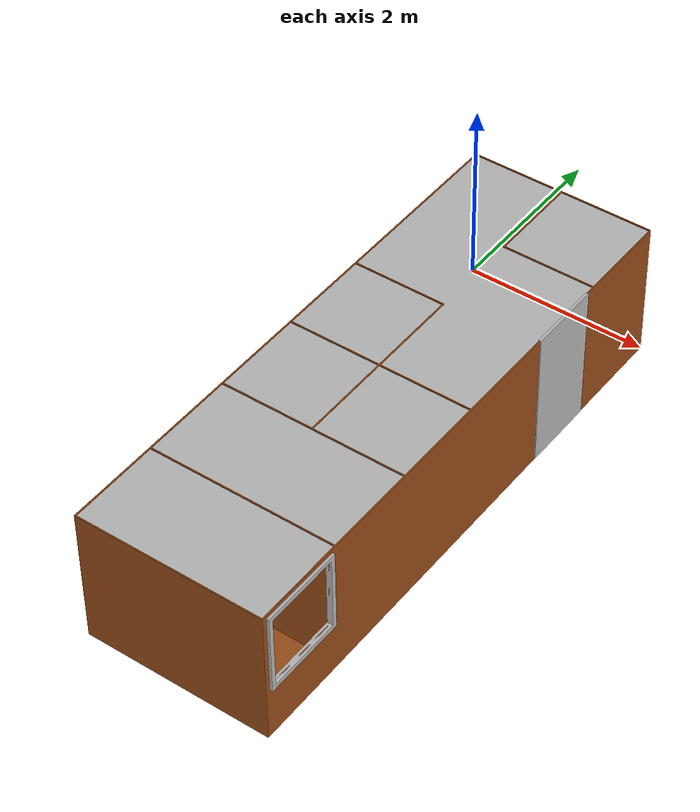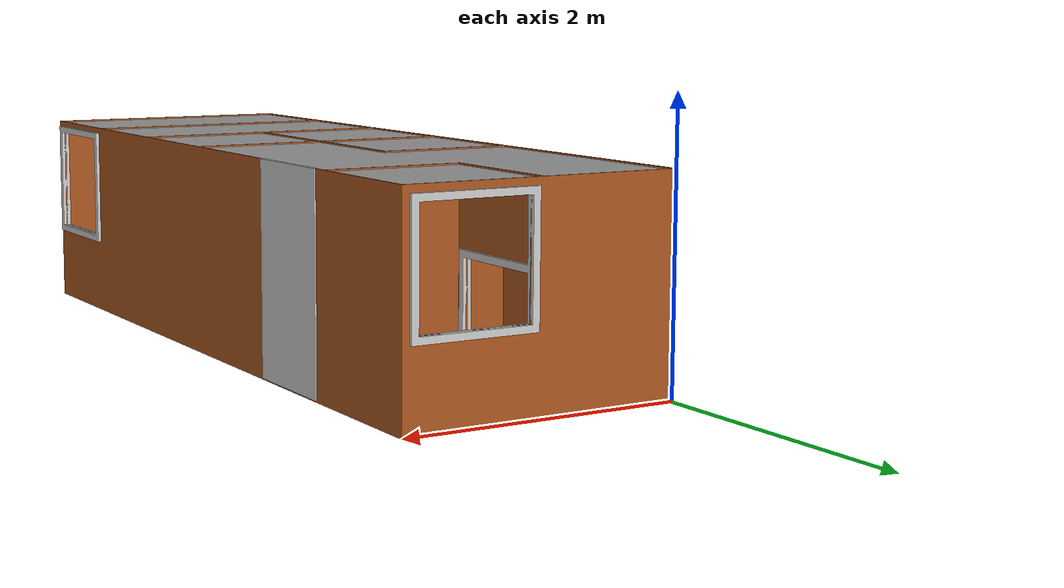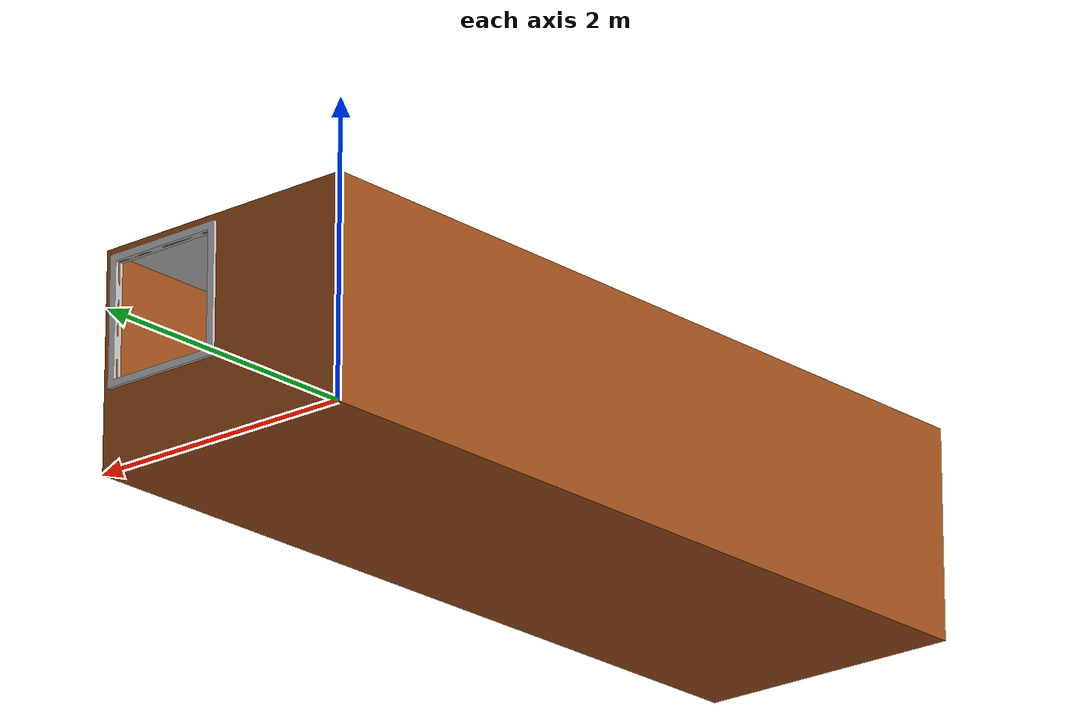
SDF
<?xml version="1.0"?>
<sdf version="1.5">
    <model name="cluttered_environment">
        <static>true</static>

        <!-- cluttered environment walls -->
        <link name="walls_link">
            <inertial>
              <mass>1</mass>
              <inertia>
                <ixx>0.166667</ixx>
                <ixy>0</ixy>
                <ixz>0</ixz>
                <iyy>0.166667</iyy>
                <iyz>0</iyz>
                <izz>0.166667</izz>
              </inertia>
            </inertial>
            <pose>0 0 0 0 0 -1.5708</pose>
            <visual name="walls_visual">
                <geometry>
                    <mesh>
                      <uri>model://cluttered_environment/meshes/cluttered_environment_walls.obj</uri>
                      <scale>0.01 0.01 0.01</scale>
                    </mesh>
                </geometry>
                <transparency>0</transparency>
                <cast_shadows>1</cast_shadows>
                <material>
                    <ambient>0.6 0.3 0.1 1</ambient> <!-- Cor ambiente (branco) -->
                    <diffuse>0.6 0.3 0.1 1</diffuse> <!-- Cor difusa (branco) -->
                    <specular>0.6 0.3 0.1 1</specular> <!-- Cor especular (cinza claro) -->
                </material>
            </visual>
            <collision name='collision'>
              <laser_retro>0</laser_retro>
              <max_contacts>10</max_contacts>
              <pose>0 0 0 0 0 0</pose>
              <geometry>
                <mesh>
                  <uri>model://cluttered_environment/meshes/cluttered_environment_walls.obj</uri>
                  <scale>0.01 0.01 0.01</scale>
                </mesh>
              </geometry>
            </collision>
        </link>
        <static>1</static>
        <allow_auto_disable>1</allow_auto_disable>

        <!-- cluttered environment windows -->
        <link name="windows_link">
            <inertial>
              <mass>1</mass>
              <inertia>
                <ixx>0.166667</ixx>
                <ixy>0</ixy>
                <ixz>0</ixz>
                <iyy>0.166667</iyy>
                <iyz>0</iyz>
                <izz>0.166667</izz>
              </inertia>
            </inertial>
            <pose>0 0 0 0 0 -1.5708</pose>
            <visual name="windows_visual">
                <geometry>
                    <mesh>
                      <uri>model://cluttered_environment/meshes/cluttered_environment_windows.obj</uri>
                      <scale>0.01 0.01 0.01</scale>
                    </mesh>
                </geometry>
                <transparency>0</transparency>
                <cast_shadows>1</cast_shadows>
                <material>
                    <script>
                      <ambient>1 1 1 1</ambient> <!-- Cor ambiente (branco) -->
                    <diffuse>1 1 1 1</diffuse> <!-- Cor difusa (branco) -->
                    <specular>0.5 0.5 0.5 1</specular> <!-- Nome do arquivo .mtl -->
                    </script>
                </material>
            </visual>
            <collision name='collision'>
              <laser_retro>0</laser_retro>
              <max_contacts>10</max_contacts>
              <pose>0 0 0 0 0 0</pose>
              <geometry>
                <mesh>
                  <uri>model://cluttered_environment/meshes/cluttered_environment_windows.obj</uri>
                  <scale>0.01 0.01 0.01</scale>
                </mesh>
              </geometry>
            </collision>
          </link>

        <!-- cluttered environment roof -->
        <link name="roof_link">
            <inertial>
              <mass>1</mass>
              <inertia>
                <ixx>0.166667</ixx>
                <ixy>0</ixy>
                <ixz>0</ixz>
                <iyy>0.166667</iyy>
                <iyz>0</iyz>
                <izz>0.166667</izz>
              </inertia>
            </inertial>
            <pose>0 0 1.5 -1.5708 0 -1.5708</pose>
            <visual name="roof_visual">
                <geometry>
                    <mesh>
                      <uri>model://cluttered_environment/meshes/cluttered_environment_roof.obj</uri>
                      <scale>1.0 1.0 1.0</scale>
                    </mesh>
                </geometry>
                <transparency>0</transparency>
                <cast_shadows>1</cast_shadows>
            </visual>
            <collision name='collision'>
              <laser_retro>0</laser_retro>
              <max_contacts>10</max_contacts>
              <pose>0 0 0 0 0 0</pose>
              <geometry>
                <mesh>
                  <uri>model://cluttered_environment/meshes/cluttered_environment_roof.obj</uri>
                  <scale>1.0 1.0 1.0</scale>
                </mesh>
              </geometry>
            </collision>
          </link>
    </model>
</sdf>
